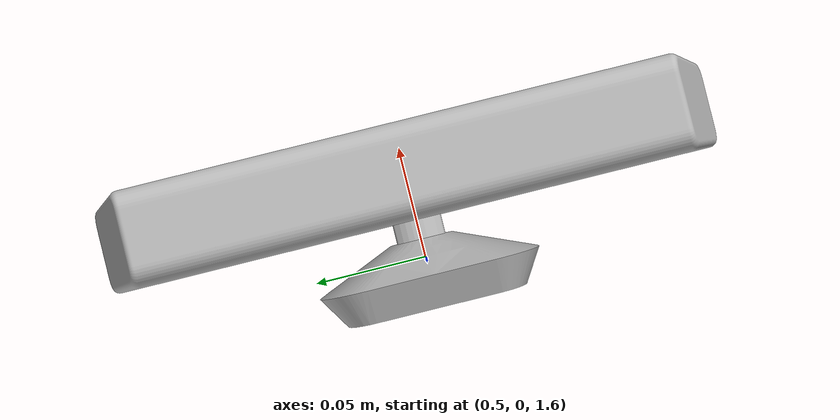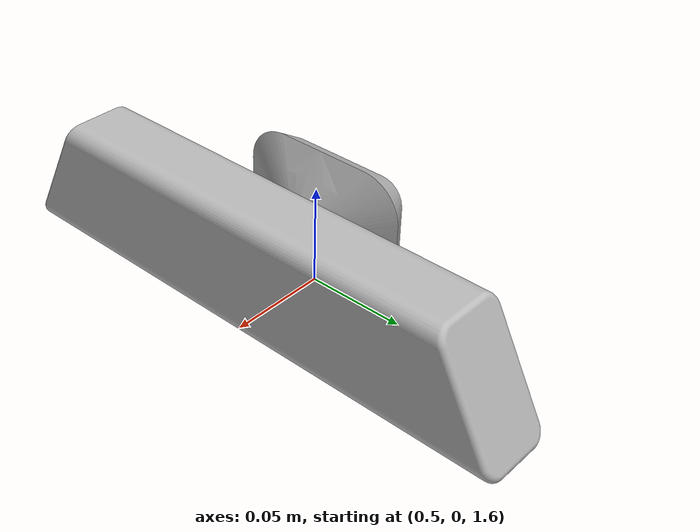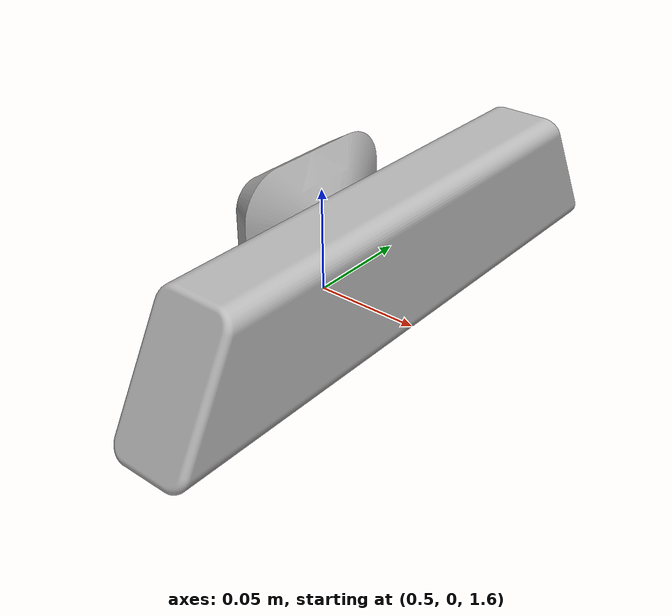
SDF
<?xml version="1.0" ?>
<sdf version="1.6">
  <world name="cubes_task">
    <gravity>0 0 -9.81</gravity>
    <physics name="default_physics" default="0" type="ode">
      <max_step_size>0.001</max_step_size>
      <real_time_factor>1</real_time_factor>
      <real_time_update_rate>1000</real_time_update_rate>
    </physics>
    <scene>
      <ambient>0.4 0.4 0.4 1</ambient>
      <background>0.7 0.7 0.7 1</background>
      <shadows>1</shadows>
    </scene>
    <!-- A gazebo links attacher -->
    <plugin name="ros_link_attacher_plugin" filename="libgazebo_ros_link_attacher.so"/>
    <!-- Light Source -->
    <include>
      <uri>model://sun</uri>
    </include>
    <!-- A ground plane -->
    <include>
      <uri>model://ground_plane</uri>
      <pose>0 0 0 0 0 0</pose>
    </include>
    <!-- Kinect -->
    <model name="openni_kinect">
      <static>true</static>
      <pose>0.5 0 1.6 0 1.5708 0</pose>
      <include>
        <uri>model://openni_kinect</uri>
      </include>
    </model>
  </world>
</sdf>

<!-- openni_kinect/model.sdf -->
<sdf version="1.6">
  <model name="openni_kinect">
    <pose>0 0 0.036 0 0 0</pose>
    <link name="link">
      <inertial>
        <mass>0.1</mass>
      </inertial>
      <collision name="collision">
        <geometry>
          <box>
            <size>0.073000 0.276000 0.072000</size>
          </box>
        </geometry>
      </collision>
      <visual name="visual">
        <geometry>
          <mesh>
            <uri>model://kinect/meshes/kinect.dae</uri>
          </mesh>
        </geometry>
      </visual>
      <sensor name="camera" type="depth">
        <update_rate>20</update_rate>
        <camera>
          <horizontal_fov>1.047198</horizontal_fov>
          <image>
            <width>640</width>
            <height>480</height>
            <format>R8G8B8</format>
          </image>
          <clip>
            <near>0.05</near>
            <far>3</far>
          </clip>
        </camera>
        <plugin name="openni_kinect_controller" filename="libgazebo_ros_openni_kinect.so">
          <alwaysOn>true</alwaysOn>
          <updateRate>20</updateRate>
          <cameraName>kinect</cameraName>
          <imageTopicName>rgb/image_raw</imageTopicName>
          <cameraInfoTopicName>rgb/camera_info</cameraInfoTopicName>
          <depthImageTopicName>depth/image_raw</depthImageTopicName>
          <depthImageInfoTopicName>depth/camera_info</depthImageInfoTopicName>
          <pointCloudTopicName>depth/points</pointCloudTopicName>
          <frameName>camera_optical_frame</frameName>
          <pointCloudCutoff>0.4</pointCloudCutoff>
          <distortionK1>0.0</distortionK1>
          <distortionK2>0.0</distortionK2>
          <distortionK3>0.0</distortionK3>
          <distortionT1>0.0</distortionT1>
          <distortionT2>0.0</distortionT2>
          <CxPrime>0</CxPrime>
          <Cx>0</Cx>
          <Cy>0</Cy>
          <focalLength>0</focalLength>
          <hackBaseline>0</hackBaseline>
        </plugin>
      </sensor>
    </link>
  </model>
</sdf>
